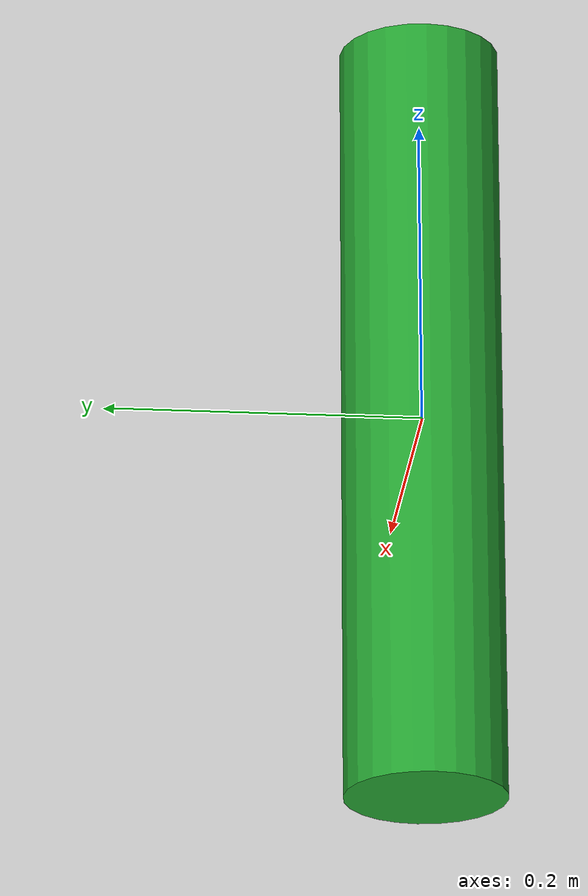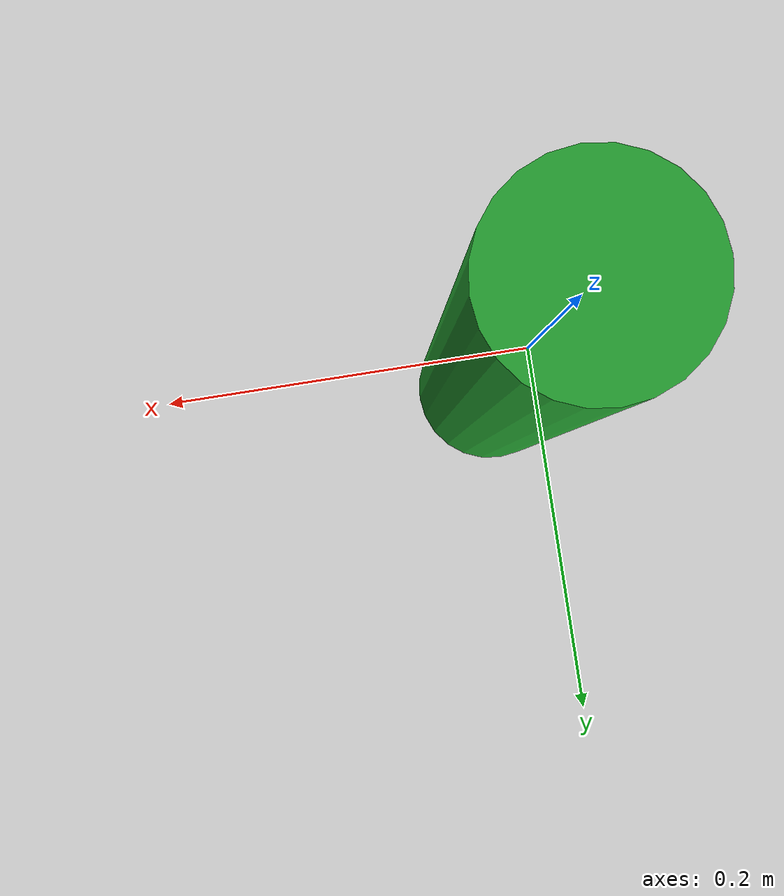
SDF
<sdf version="1.6"><model name="model"><link name="link"><pose>0 0 0 0 0 0</pose><gravity>true</gravity><static>true</static><inertial><mass>1.0</mass><inertia><ixx>0.25</ixx><ixy>0</ixy><ixz>0</ixz><iyy>0.25</iyy><iyz>0</iyz><izz>0.5</izz></inertia></inertial><collision name="collision"><geometry><cylinder><radius>0.050845138191883896</radius><length>0.5</length></cylinder></geometry></collision><visual name="visual"><geometry><cylinder><radius>0.050845138191883896</radius><length>0.5</length></cylinder></geometry><material><script><name>Gazebo/Green</name><uri>file://media/materials/scripts/gazebo.material</uri></script></material></visual></link></model></sdf>
